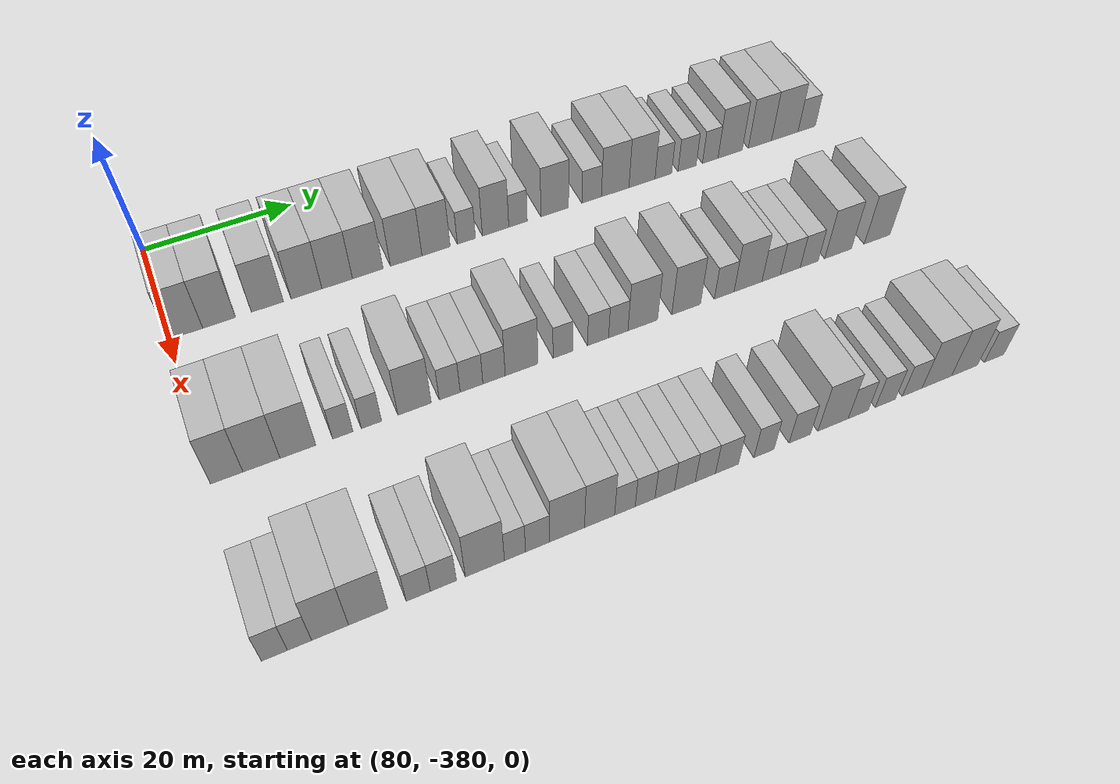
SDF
<sdf version="1.6">
 <world name="default">
  <model name="building_560">
   <static>1</static>
   <pose>91.0000 -377.8980 0 0.000000 0.000000 0.000000</pose>
   <link name="link">
    <pose>0 0 4.50 0 0 0</pose>
    <collision name="collision"><geometry><box><size>10.0000 4.2041 9.0000</size></box></geometry></collision>
    <visual name="visual">
     <cast_shadows>0</cast_shadows>
     <geometry><box><size>10.0000 4.2041 9.0000</size></box></geometry>
     <material>
      <script>
       <uri>model://HANNAS_wall/materials/scripts</uri>
       <uri>model://HANNAS_wall/materials/textures</uri>
       <name>vrc/HANNAS_wall</name>
      </script>
     </material>
    </visual>
   </link>
  </model>
  <model name="building_561">
   <static>1</static>
   <pose>91.0000 -373.7364 0 0.000000 0.000000 0.000000</pose>
   <link name="link">
    <pose>0 0 4.50 0 0 0</pose>
    <collision name="collision"><geometry><box><size>10.0000 4.1190 9.0000</size></box></geometry></collision>
    <visual name="visual">
     <cast_shadows>0</cast_shadows>
     <geometry><box><size>10.0000 4.1190 9.0000</size></box></geometry>
     <material>
      <script>
       <uri>model://HANNAS_wall/materials/scripts</uri>
       <uri>model://HANNAS_wall/materials/textures</uri>
       <name>vrc/HANNAS_wall</name>
      </script>
     </material>
    </visual>
   </link>
  </model>
  <model name="building_562">
   <static>1</static>
   <pose>91.0000 -367.6117 0 0.000000 0.000000 0.000000</pose>
   <link name="link">
    <pose>0 0 4.50 0 0 0</pose>
    <collision name="collision"><geometry><box><size>10.0000 4.1303 9.0000</size></box></geometry></collision>
    <visual name="visual">
     <cast_shadows>0</cast_shadows>
     <geometry><box><size>10.0000 4.1303 9.0000</size></box></geometry>
     <material>
      <script>
       <uri>model://HANNAS_wall/materials/scripts</uri>
       <uri>model://HANNAS_wall/materials/textures</uri>
       <name>vrc/HANNAS_wall</name>
      </script>
     </material>
    </visual>
   </link>
  </model>
  <model name="building_563">
   <static>1</static>
   <pose>91.0000 -362.5352 0 0.000000 0.000000 0.000000</pose>
   <link name="link">
    <pose>0 0 4.50 0 0 0</pose>
    <collision name="collision"><geometry><box><size>10.0000 4.0228 9.0000</size></box></geometry></collision>
    <visual name="visual">
     <cast_shadows>0</cast_shadows>
     <geometry><box><size>10.0000 4.0228 9.0000</size></box></geometry>
     <material>
      <script>
       <uri>model://HANNAS_wall/materials/scripts</uri>
       <uri>model://HANNAS_wall/materials/textures</uri>
       <name>vrc/HANNAS_wall</name>
      </script>
     </material>
    </visual>
   </link>
  </model>
  <model name="building_564">
   <static>1</static>
   <pose>91.0000 -358.4933 0 0.000000 0.000000 0.000000</pose>
   <link name="link">
    <pose>0 0 4.50 0 0 0</pose>
    <collision name="collision"><geometry><box><size>10.0000 4.0609 9.0000</size></box></geometry></collision>
    <visual name="visual">
     <cast_shadows>0</cast_shadows>
     <geometry><box><size>10.0000 4.0609 9.0000</size></box></geometry>
     <material>
      <script>
       <uri>model://HANNAS_wall/materials/scripts</uri>
       <uri>model://HANNAS_wall/materials/textures</uri>
       <name>vrc/HANNAS_wall</name>
      </script>
     </material>
    </visual>
   </link>
  </model>
  <model name="building_565">
   <static>1</static>
   <pose>91.0000 -354.4059 0 0.000000 0.000000 0.000000</pose>
   <link name="link">
    <pose>0 0 4.50 0 0 0</pose>
    <collision name="collision"><geometry><box><size>10.0000 4.1139 9.0000</size></box></geometry></collision>
    <visual name="visual">
     <cast_shadows>0</cast_shadows>
     <geometry><box><size>10.0000 4.1139 9.0000</size></box></geometry>
     <material>
      <script>
       <uri>model://HANNAS_wall/materials/scripts</uri>
       <uri>model://HANNAS_wall/materials/textures</uri>
       <name>vrc/HANNAS_wall</name>
      </script>
     </material>
    </visual>
   </link>
  </model>
  <model name="building_566">
   <static>1</static>
   <pose>91.0000 -349.1775 0 0.000000 0.000000 0.000000</pose>
   <link name="link">
    <pose>0 0 4.50 0 0 0</pose>
    <collision name="collision"><geometry><box><size>10.0000 4.3428 9.0000</size></box></geometry></collision>
    <visual name="visual">
     <cast_shadows>0</cast_shadows>
     <geometry><box><size>10.0000 4.3428 9.0000</size></box></geometry>
     <material>
      <script>
       <uri>model://HANNAS_wall/materials/scripts</uri>
       <uri>model://HANNAS_wall/materials/textures</uri>
       <name>vrc/HANNAS_wall</name>
      </script>
     </material>
    </visual>
   </link>
  </model>
  <model name="building_567">
   <static>1</static>
   <pose>91.0000 -345.0442 0 0.000000 0.000000 0.000000</pose>
   <link name="link">
    <pose>0 0 4.50 0 0 0</pose>
    <collision name="collision"><geometry><box><size>10.0000 3.9239 9.0000</size></box></geometry></collision>
    <visual name="visual">
     <cast_shadows>0</cast_shadows>
     <geometry><box><size>10.0000 3.9239 9.0000</size></box></geometry>
     <material>
      <script>
       <uri>model://HANNAS_wall/materials/scripts</uri>
       <uri>model://HANNAS_wall/materials/textures</uri>
       <name>vrc/HANNAS_wall</name>
      </script>
     </material>
    </visual>
   </link>
  </model>
  <model name="building_568">
   <static>1</static>
   <pose>91.0000 -340.8019 0 0.000000 0.000000 0.000000</pose>
   <link name="link">
    <pose>0 0 3.00 0 0 0</pose>
    <collision name="collision"><geometry><box><size>10.0000 2.5607 6.0000</size></box></geometry></collision>
    <visual name="visual">
     <cast_shadows>0</cast_shadows>
     <geometry><box><size>10.0000 2.5607 6.0000</size></box></geometry>
     <material>
      <script>
       <uri>model://HANNAS_wall/materials/scripts</uri>
       <uri>model://HANNAS_wall/materials/textures</uri>
       <name>vrc/HANNAS_wall</name>
      </script>
     </material>
    </visual>
   </link>
  </model>
  <model name="building_569">
   <static>1</static>
   <pose>91.0000 -336.6332 0 0.000000 0.000000 0.000000</pose>
   <link name="link">
    <pose>0 0 4.50 0 0 0</pose>
    <collision name="collision"><geometry><box><size>10.0000 3.7766 9.0000</size></box></geometry></collision>
    <visual name="visual">
     <cast_shadows>0</cast_shadows>
     <geometry><box><size>10.0000 3.7766 9.0000</size></box></geometry>
     <material>
      <script>
       <uri>model://HANNAS_wall/materials/scripts</uri>
       <uri>model://HANNAS_wall/materials/textures</uri>
       <name>vrc/HANNAS_wall</name>
      </script>
     </material>
    </visual>
   </link>
  </model>
  <model name="building_570">
   <static>1</static>
   <pose>91.0000 -333.4052 0 0.000000 0.000000 0.000000</pose>
   <link name="link">
    <pose>0 0 3.00 0 0 0</pose>
    <collision name="collision"><geometry><box><size>10.0000 2.6794 6.0000</size></box></geometry></collision>
    <visual name="visual">
     <cast_shadows>0</cast_shadows>
     <geometry><box><size>10.0000 2.6794 6.0000</size></box></geometry>
     <material>
      <script>
       <uri>model://HANNAS_wall/materials/scripts</uri>
       <uri>model://HANNAS_wall/materials/textures</uri>
       <name>vrc/HANNAS_wall</name>
      </script>
     </material>
    </visual>
   </link>
  </model>
  <model name="building_571">
   <static>1</static>
   <pose>91.0000 -328.0269 0 0.000000 0.000000 0.000000</pose>
   <link name="link">
    <pose>0 0 4.50 0 0 0</pose>
    <collision name="collision"><geometry><box><size>10.0000 4.0771 9.0000</size></box></geometry></collision>
    <visual name="visual">
     <cast_shadows>0</cast_shadows>
     <geometry><box><size>10.0000 4.0771 9.0000</size></box></geometry>
     <material>
      <script>
       <uri>model://HANNAS_wall/materials/scripts</uri>
       <uri>model://HANNAS_wall/materials/textures</uri>
       <name>vrc/HANNAS_wall</name>
      </script>
     </material>
    </visual>
   </link>
  </model>
  <model name="building_572">
   <static>1</static>
   <pose>91.0000 -322.5203 0 0.000000 0.000000 0.000000</pose>
   <link name="link">
    <pose>0 0 3.00 0 0 0</pose>
    <collision name="collision"><geometry><box><size>10.0000 2.9361 6.0000</size></box></geometry></collision>
    <visual name="visual">
     <cast_shadows>0</cast_shadows>
     <geometry><box><size>10.0000 2.9361 6.0000</size></box></geometry>
     <material>
      <script>
       <uri>model://HANNAS_wall/materials/scripts</uri>
       <uri>model://HANNAS_wall/materials/textures</uri>
       <name>vrc/HANNAS_wall</name>
      </script>
     </material>
    </visual>
   </link>
  </model>
  <model name="building_573">
   <static>1</static>
   <pose>91.0000 -318.9474 0 0.000000 0.000000 0.000000</pose>
   <link name="link">
    <pose>0 0 4.50 0 0 0</pose>
    <collision name="collision"><geometry><box><size>10.0000 4.2098 9.0000</size></box></geometry></collision>
    <visual name="visual">
     <cast_shadows>0</cast_shadows>
     <geometry><box><size>10.0000 4.2098 9.0000</size></box></geometry>
     <material>
      <script>
       <uri>model://HANNAS_wall/materials/scripts</uri>
       <uri>model://HANNAS_wall/materials/textures</uri>
       <name>vrc/HANNAS_wall</name>
      </script>
     </material>
    </visual>
   </link>
  </model>
  <model name="building_574">
   <static>1</static>
   <pose>91.0000 -314.8272 0 0.000000 0.000000 0.000000</pose>
   <link name="link">
    <pose>0 0 4.50 0 0 0</pose>
    <collision name="collision"><geometry><box><size>10.0000 4.0307 9.0000</size></box></geometry></collision>
    <visual name="visual">
     <cast_shadows>0</cast_shadows>
     <geometry><box><size>10.0000 4.0307 9.0000</size></box></geometry>
     <material>
      <script>
       <uri>model://HANNAS_wall/materials/scripts</uri>
       <uri>model://HANNAS_wall/materials/textures</uri>
       <name>vrc/HANNAS_wall</name>
      </script>
     </material>
    </visual>
   </link>
  </model>
  <model name="building_575">
   <static>1</static>
   <pose>91.0000 -311.5122 0 0.000000 0.000000 0.000000</pose>
   <link name="link">
    <pose>0 0 3.00 0 0 0</pose>
    <collision name="collision"><geometry><box><size>10.0000 2.5993 6.0000</size></box></geometry></collision>
    <visual name="visual">
     <cast_shadows>0</cast_shadows>
     <geometry><box><size>10.0000 2.5993 6.0000</size></box></geometry>
     <material>
      <script>
       <uri>model://HANNAS_wall/materials/scripts</uri>
       <uri>model://HANNAS_wall/materials/textures</uri>
       <name>vrc/HANNAS_wall</name>
      </script>
     </material>
    </visual>
   </link>
  </model>
  <model name="building_576">
   <static>1</static>
   <pose>91.0000 -307.7695 0 0.000000 0.000000 0.000000</pose>
   <link name="link">
    <pose>0 0 3.00 0 0 0</pose>
    <collision name="collision"><geometry><box><size>10.0000 2.8862 6.0000</size></box></geometry></collision>
    <visual name="visual">
     <cast_shadows>0</cast_shadows>
     <geometry><box><size>10.0000 2.8862 6.0000</size></box></geometry>
     <material>
      <script>
       <uri>model://HANNAS_wall/materials/scripts</uri>
       <uri>model://HANNAS_wall/materials/textures</uri>
       <name>vrc/HANNAS_wall</name>
      </script>
     </material>
    </visual>
   </link>
  </model>
  <model name="building_577">
   <static>1</static>
   <pose>91.0000 -304.0789 0 0.000000 0.000000 0.000000</pose>
   <link name="link">
    <pose>0 0 3.00 0 0 0</pose>
    <collision name="collision"><geometry><box><size>10.0000 2.4949 6.0000</size></box></geometry></collision>
    <visual name="visual">
     <cast_shadows>0</cast_shadows>
     <geometry><box><size>10.0000 2.4949 6.0000</size></box></geometry>
     <material>
      <script>
       <uri>model://HANNAS_wall/materials/scripts</uri>
       <uri>model://HANNAS_wall/materials/textures</uri>
       <name>vrc/HANNAS_wall</name>
      </script>
     </material>
    </visual>
   </link>
  </model>
  <model name="building_578">
   <static>1</static>
   <pose>91.0000 -300.8722 0 0.000000 0.000000 0.000000</pose>
   <link name="link">
    <pose>0 0 4.50 0 0 0</pose>
    <collision name="collision"><geometry><box><size>10.0000 3.9184 9.0000</size></box></geometry></collision>
    <visual name="visual">
     <cast_shadows>0</cast_shadows>
     <geometry><box><size>10.0000 3.9184 9.0000</size></box></geometry>
     <material>
      <script>
       <uri>model://HANNAS_wall/materials/scripts</uri>
       <uri>model://HANNAS_wall/materials/textures</uri>
       <name>vrc/HANNAS_wall</name>
      </script>
     </material>
    </visual>
   </link>
  </model>
  <model name="building_579">
   <static>1</static>
   <pose>91.0000 -296.0052 0 0.000000 0.000000 0.000000</pose>
   <link name="link">
    <pose>0 0 4.50 0 0 0</pose>
    <collision name="collision"><geometry><box><size>10.0000 3.8156 9.0000</size></box></geometry></collision>
    <visual name="visual">
     <cast_shadows>0</cast_shadows>
     <geometry><box><size>10.0000 3.8156 9.0000</size></box></geometry>
     <material>
      <script>
       <uri>model://HANNAS_wall/materials/scripts</uri>
       <uri>model://HANNAS_wall/materials/textures</uri>
       <name>vrc/HANNAS_wall</name>
      </script>
     </material>
    </visual>
   </link>
  </model>
  <model name="building_580">
   <static>1</static>
   <pose>91.0000 -291.8831 0 0.000000 0.000000 0.000000</pose>
   <link name="link">
    <pose>0 0 4.50 0 0 0</pose>
    <collision name="collision"><geometry><box><size>10.0000 4.4286 9.0000</size></box></geometry></collision>
    <visual name="visual">
     <cast_shadows>0</cast_shadows>
     <geometry><box><size>10.0000 4.4286 9.0000</size></box></geometry>
     <material>
      <script>
       <uri>model://HANNAS_wall/materials/scripts</uri>
       <uri>model://HANNAS_wall/materials/textures</uri>
       <name>vrc/HANNAS_wall</name>
      </script>
     </material>
    </visual>
   </link>
  </model>
  <model name="building_581">
   <static>1</static>
   <pose>91.0000 -288.2181 0 0.000000 0.000000 0.000000</pose>
   <link name="link">
    <pose>0 0 3.00 0 0 0</pose>
    <collision name="collision"><geometry><box><size>10.0000 2.9015 6.0000</size></box></geometry></collision>
    <visual name="visual">
     <cast_shadows>0</cast_shadows>
     <geometry><box><size>10.0000 2.9015 6.0000</size></box></geometry>
     <material>
      <script>
       <uri>model://HANNAS_wall/materials/scripts</uri>
       <uri>model://HANNAS_wall/materials/textures</uri>
       <name>vrc/HANNAS_wall</name>
      </script>
     </material>
    </visual>
   </link>
  </model>
  <model name="building_743">
   <static>1</static>
   <pose>113.0000 -378.1537 0 0.000000 0.000000 0.000000</pose>
   <link name="link">
    <pose>0 0 4.50 0 0 0</pose>
    <collision name="collision"><geometry><box><size>10.0000 3.6926 9.0000</size></box></geometry></collision>
    <visual name="visual">
     <cast_shadows>0</cast_shadows>
     <geometry><box><size>10.0000 3.6926 9.0000</size></box></geometry>
     <material>
      <script>
       <uri>model://HANNAS_wall/materials/scripts</uri>
       <uri>model://HANNAS_wall/materials/textures</uri>
       <name>vrc/HANNAS_wall</name>
      </script>
     </material>
    </visual>
   </link>
  </model>
  <model name="building_744">
   <static>1</static>
   <pose>113.0000 -374.1718 0 0.000000 0.000000 0.000000</pose>
   <link name="link">
    <pose>0 0 4.50 0 0 0</pose>
    <collision name="collision"><geometry><box><size>10.0000 4.2712 9.0000</size></box></geometry></collision>
    <visual name="visual">
     <cast_shadows>0</cast_shadows>
     <geometry><box><size>10.0000 4.2712 9.0000</size></box></geometry>
     <material>
      <script>
       <uri>model://HANNAS_wall/materials/scripts</uri>
       <uri>model://HANNAS_wall/materials/textures</uri>
       <name>vrc/HANNAS_wall</name>
      </script>
     </material>
    </visual>
   </link>
  </model>
  <model name="building_745">
   <static>1</static>
   <pose>113.0000 -369.9419 0 0.000000 0.000000 0.000000</pose>
   <link name="link">
    <pose>0 0 4.50 0 0 0</pose>
    <collision name="collision"><geometry><box><size>10.0000 4.1886 9.0000</size></box></geometry></collision>
    <visual name="visual">
     <cast_shadows>0</cast_shadows>
     <geometry><box><size>10.0000 4.1886 9.0000</size></box></geometry>
     <material>
      <script>
       <uri>model://HANNAS_wall/materials/scripts</uri>
       <uri>model://HANNAS_wall/materials/textures</uri>
       <name>vrc/HANNAS_wall</name>
      </script>
     </material>
    </visual>
   </link>
  </model>
  <model name="building_746">
   <static>1</static>
   <pose>113.0000 -364.6315 0 0.000000 0.000000 0.000000</pose>
   <link name="link">
    <pose>0 0 3.00 0 0 0</pose>
    <collision name="collision"><geometry><box><size>10.0000 2.4324 6.0000</size></box></geometry></collision>
    <visual name="visual">
     <cast_shadows>0</cast_shadows>
     <geometry><box><size>10.0000 2.4324 6.0000</size></box></geometry>
     <material>
      <script>
       <uri>model://HANNAS_wall/materials/scripts</uri>
       <uri>model://HANNAS_wall/materials/textures</uri>
       <name>vrc/HANNAS_wall</name>
      </script>
     </material>
    </visual>
   </link>
  </model>
  <model name="building_747">
   <static>1</static>
   <pose>113.0000 -361.1857 0 0.000000 0.000000 0.000000</pose>
   <link name="link">
    <pose>0 0 3.00 0 0 0</pose>
    <collision name="collision"><geometry><box><size>10.0000 2.4591 6.0000</size></box></geometry></collision>
    <visual name="visual">
     <cast_shadows>0</cast_shadows>
     <geometry><box><size>10.0000 2.4591 6.0000</size></box></geometry>
     <material>
      <script>
       <uri>model://HANNAS_wall/materials/scripts</uri>
       <uri>model://HANNAS_wall/materials/textures</uri>
       <name>vrc/HANNAS_wall</name>
      </script>
     </material>
    </visual>
   </link>
  </model>
  <model name="building_748">
   <static>1</static>
   <pose>113.0000 -355.8878 0 0.000000 0.000000 0.000000</pose>
   <link name="link">
    <pose>0 0 4.50 0 0 0</pose>
    <collision name="collision"><geometry><box><size>10.0000 4.1368 9.0000</size></box></geometry></collision>
    <visual name="visual">
     <cast_shadows>0</cast_shadows>
     <geometry><box><size>10.0000 4.1368 9.0000</size></box></geometry>
     <material>
      <script>
       <uri>model://HANNAS_wall/materials/scripts</uri>
       <uri>model://HANNAS_wall/materials/textures</uri>
       <name>vrc/HANNAS_wall</name>
      </script>
     </material>
    </visual>
   </link>
  </model>
  <model name="building_749">
   <static>1</static>
   <pose>113.0000 -351.4961 0 0.000000 0.000000 0.000000</pose>
   <link name="link">
    <pose>0 0 3.00 0 0 0</pose>
    <collision name="collision"><geometry><box><size>10.0000 2.6465 6.0000</size></box></geometry></collision>
    <visual name="visual">
     <cast_shadows>0</cast_shadows>
     <geometry><box><size>10.0000 2.6465 6.0000</size></box></geometry>
     <material>
      <script>
       <uri>model://HANNAS_wall/materials/scripts</uri>
       <uri>model://HANNAS_wall/materials/textures</uri>
       <name>vrc/HANNAS_wall</name>
      </script>
     </material>
    </visual>
   </link>
  </model>
  <model name="building_750">
   <static>1</static>
   <pose>113.0000 -348.7234 0 0.000000 0.000000 0.000000</pose>
   <link name="link">
    <pose>0 0 3.00 0 0 0</pose>
    <collision name="collision"><geometry><box><size>10.0000 2.8990 6.0000</size></box></geometry></collision>
    <visual name="visual">
     <cast_shadows>0</cast_shadows>
     <geometry><box><size>10.0000 2.8990 6.0000</size></box></geometry>
     <material>
      <script>
       <uri>model://HANNAS_wall/materials/scripts</uri>
       <uri>model://HANNAS_wall/materials/textures</uri>
       <name>vrc/HANNAS_wall</name>
      </script>
     </material>
    </visual>
   </link>
  </model>
  <model name="building_751">
   <static>1</static>
   <pose>113.0000 -345.8393 0 0.000000 0.000000 0.000000</pose>
   <link name="link">
    <pose>0 0 3.00 0 0 0</pose>
    <collision name="collision"><geometry><box><size>10.0000 2.8691 6.0000</size></box></geometry></collision>
    <visual name="visual">
     <cast_shadows>0</cast_shadows>
     <geometry><box><size>10.0000 2.8691 6.0000</size></box></geometry>
     <material>
      <script>
       <uri>model://HANNAS_wall/materials/scripts</uri>
       <uri>model://HANNAS_wall/materials/textures</uri>
       <name>vrc/HANNAS_wall</name>
      </script>
     </material>
    </visual>
   </link>
  </model>
  <model name="building_752">
   <static>1</static>
   <pose>113.0000 -342.2700 0 0.000000 0.000000 0.000000</pose>
   <link name="link">
    <pose>0 0 4.50 0 0 0</pose>
    <collision name="collision"><geometry><box><size>10.0000 4.2695 9.0000</size></box></geometry></collision>
    <visual name="visual">
     <cast_shadows>0</cast_shadows>
     <geometry><box><size>10.0000 4.2695 9.0000</size></box></geometry>
     <material>
      <script>
       <uri>model://HANNAS_wall/materials/scripts</uri>
       <uri>model://HANNAS_wall/materials/textures</uri>
       <name>vrc/HANNAS_wall</name>
      </script>
     </material>
    </visual>
   </link>
  </model>
  <model name="building_753">
   <static>1</static>
   <pose>113.0000 -336.8301 0 0.000000 0.000000 0.000000</pose>
   <link name="link">
    <pose>0 0 3.00 0 0 0</pose>
    <collision name="collision"><geometry><box><size>10.0000 2.6101 6.0000</size></box></geometry></collision>
    <visual name="visual">
     <cast_shadows>0</cast_shadows>
     <geometry><box><size>10.0000 2.6101 6.0000</size></box></geometry>
     <material>
      <script>
       <uri>model://HANNAS_wall/materials/scripts</uri>
       <uri>model://HANNAS_wall/materials/textures</uri>
       <name>vrc/HANNAS_wall</name>
      </script>
     </material>
    </visual>
   </link>
  </model>
  <model name="building_754">
   <static>1</static>
   <pose>113.0000 -332.0858 0 0.000000 0.000000 0.000000</pose>
   <link name="link">
    <pose>0 0 3.00 0 0 0</pose>
    <collision name="collision"><geometry><box><size>10.0000 2.8785 6.0000</size></box></geometry></collision>
    <visual name="visual">
     <cast_shadows>0</cast_shadows>
     <geometry><box><size>10.0000 2.8785 6.0000</size></box></geometry>
     <material>
      <script>
       <uri>model://HANNAS_wall/materials/scripts</uri>
       <uri>model://HANNAS_wall/materials/textures</uri>
       <name>vrc/HANNAS_wall</name>
      </script>
     </material>
    </visual>
   </link>
  </model>
  <model name="building_755">
   <static>1</static>
   <pose>113.0000 -329.3230 0 0.000000 0.000000 0.000000</pose>
   <link name="link">
    <pose>0 0 3.00 0 0 0</pose>
    <collision name="collision"><geometry><box><size>10.0000 2.6471 6.0000</size></box></geometry></collision>
    <visual name="visual">
     <cast_shadows>0</cast_shadows>
     <geometry><box><size>10.0000 2.6471 6.0000</size></box></geometry>
     <material>
      <script>
       <uri>model://HANNAS_wall/materials/scripts</uri>
       <uri>model://HANNAS_wall/materials/textures</uri>
       <name>vrc/HANNAS_wall</name>
      </script>
     </material>
    </visual>
   </link>
  </model>
  <model name="building_756">
   <static>1</static>
   <pose>113.0000 -325.9396 0 0.000000 0.000000 0.000000</pose>
   <link name="link">
    <pose>0 0 4.50 0 0 0</pose>
    <collision name="collision"><geometry><box><size>10.0000 4.1198 9.0000</size></box></geometry></collision>
    <visual name="visual">
     <cast_shadows>0</cast_shadows>
     <geometry><box><size>10.0000 4.1198 9.0000</size></box></geometry>
     <material>
      <script>
       <uri>model://HANNAS_wall/materials/scripts</uri>
       <uri>model://HANNAS_wall/materials/textures</uri>
       <name>vrc/HANNAS_wall</name>
      </script>
     </material>
    </visual>
   </link>
  </model>
  <model name="building_757">
   <static>1</static>
   <pose>113.0000 -319.8304 0 0.000000 0.000000 0.000000</pose>
   <link name="link">
    <pose>0 0 4.50 0 0 0</pose>
    <collision name="collision"><geometry><box><size>10.0000 4.0986 9.0000</size></box></geometry></collision>
    <visual name="visual">
     <cast_shadows>0</cast_shadows>
     <geometry><box><size>10.0000 4.0986 9.0000</size></box></geometry>
     <material>
      <script>
       <uri>model://HANNAS_wall/materials/scripts</uri>
       <uri>model://HANNAS_wall/materials/textures</uri>
       <name>vrc/HANNAS_wall</name>
      </script>
     </material>
    </visual>
   </link>
  </model>
  <model name="building_758">
   <static>1</static>
   <pose>113.0000 -314.3562 0 0.000000 0.000000 0.000000</pose>
   <link name="link">
    <pose>0 0 3.00 0 0 0</pose>
    <collision name="collision"><geometry><box><size>10.0000 2.8499 6.0000</size></box></geometry></collision>
    <visual name="visual">
     <cast_shadows>0</cast_shadows>
     <geometry><box><size>10.0000 2.8499 6.0000</size></box></geometry>
     <material>
      <script>
       <uri>model://HANNAS_wall/materials/scripts</uri>
       <uri>model://HANNAS_wall/materials/textures</uri>
       <name>vrc/HANNAS_wall</name>
      </script>
     </material>
    </visual>
   </link>
  </model>
  <model name="building_759">
   <static>1</static>
   <pose>113.0000 -310.8762 0 0.000000 0.000000 0.000000</pose>
   <link name="link">
    <pose>0 0 4.50 0 0 0</pose>
    <collision name="collision"><geometry><box><size>10.0000 4.1100 9.0000</size></box></geometry></collision>
    <visual name="visual">
     <cast_shadows>0</cast_shadows>
     <geometry><box><size>10.0000 4.1100 9.0000</size></box></geometry>
     <material>
      <script>
       <uri>model://HANNAS_wall/materials/scripts</uri>
       <uri>model://HANNAS_wall/materials/textures</uri>
       <name>vrc/HANNAS_wall</name>
      </script>
     </material>
    </visual>
   </link>
  </model>
  <model name="building_760">
   <static>1</static>
   <pose>113.0000 -307.4540 0 0.000000 0.000000 0.000000</pose>
   <link name="link">
    <pose>0 0 3.00 0 0 0</pose>
    <collision name="collision"><geometry><box><size>10.0000 2.7344 6.0000</size></box></geometry></collision>
    <visual name="visual">
     <cast_shadows>0</cast_shadows>
     <geometry><box><size>10.0000 2.7344 6.0000</size></box></geometry>
     <material>
      <script>
       <uri>model://HANNAS_wall/materials/scripts</uri>
       <uri>model://HANNAS_wall/materials/textures</uri>
       <name>vrc/HANNAS_wall</name>
      </script>
     </material>
    </visual>
   </link>
  </model>
  <model name="building_761">
   <static>1</static>
   <pose>113.0000 -304.5899 0 0.000000 0.000000 0.000000</pose>
   <link name="link">
    <pose>0 0 3.00 0 0 0</pose>
    <collision name="collision"><geometry><box><size>10.0000 2.9938 6.0000</size></box></geometry></collision>
    <visual name="visual">
     <cast_shadows>0</cast_shadows>
     <geometry><box><size>10.0000 2.9938 6.0000</size></box></geometry>
     <material>
      <script>
       <uri>model://HANNAS_wall/materials/scripts</uri>
       <uri>model://HANNAS_wall/materials/textures</uri>
       <name>vrc/HANNAS_wall</name>
      </script>
     </material>
    </visual>
   </link>
  </model>
  <model name="building_762">
   <static>1</static>
   <pose>113.0000 -301.7258 0 0.000000 0.000000 0.000000</pose>
   <link name="link">
    <pose>0 0 3.00 0 0 0</pose>
    <collision name="collision"><geometry><box><size>10.0000 2.7342 6.0000</size></box></geometry></collision>
    <visual name="visual">
     <cast_shadows>0</cast_shadows>
     <geometry><box><size>10.0000 2.7342 6.0000</size></box></geometry>
     <material>
      <script>
       <uri>model://HANNAS_wall/materials/scripts</uri>
       <uri>model://HANNAS_wall/materials/textures</uri>
       <name>vrc/HANNAS_wall</name>
      </script>
     </material>
    </visual>
   </link>
  </model>
  <model name="building_763">
   <static>1</static>
   <pose>113.0000 -297.2979 0 0.000000 0.000000 0.000000</pose>
   <link name="link">
    <pose>0 0 4.50 0 0 0</pose>
    <collision name="collision"><geometry><box><size>10.0000 4.1217 9.0000</size></box></geometry></collision>
    <visual name="visual">
     <cast_shadows>0</cast_shadows>
     <geometry><box><size>10.0000 4.1217 9.0000</size></box></geometry>
     <material>
      <script>
       <uri>model://HANNAS_wall/materials/scripts</uri>
       <uri>model://HANNAS_wall/materials/textures</uri>
       <name>vrc/HANNAS_wall</name>
      </script>
     </material>
    </visual>
   </link>
  </model>
  <model name="building_764">
   <static>1</static>
   <pose>113.0000 -291.2049 0 0.000000 0.000000 0.000000</pose>
   <link name="link">
    <pose>0 0 4.50 0 0 0</pose>
    <collision name="collision"><geometry><box><size>10.0000 4.0642 9.0000</size></box></geometry></collision>
    <visual name="visual">
     <cast_shadows>0</cast_shadows>
     <geometry><box><size>10.0000 4.0642 9.0000</size></box></geometry>
     <material>
      <script>
       <uri>model://HANNAS_wall/materials/scripts</uri>
       <uri>model://HANNAS_wall/materials/textures</uri>
       <name>vrc/HANNAS_wall</name>
      </script>
     </material>
    </visual>
   </link>
  </model>
  <model name="building_930">
   <static>1</static>
   <pose>135.0000 -378.6527 0 0.000000 0.000000 0.000000</pose>
   <link name="link">
    <pose>0 0 3.00 0 0 0</pose>
    <collision name="collision"><geometry><box><size>10.0000 2.6945 6.0000</size></box></geometry></collision>
    <visual name="visual">
     <cast_shadows>0</cast_shadows>
     <geometry><box><size>10.0000 2.6945 6.0000</size></box></geometry>
     <material>
      <script>
       <uri>model://HANNAS_wall/materials/scripts</uri>
       <uri>model://HANNAS_wall/materials/textures</uri>
       <name>vrc/HANNAS_wall</name>
      </script>
     </material>
    </visual>
   </link>
  </model>
  <model name="building_931">
   <static>1</static>
   <pose>135.0000 -376.0555 0 0.000000 0.000000 0.000000</pose>
   <link name="link">
    <pose>0 0 3.00 0 0 0</pose>
    <collision name="collision"><geometry><box><size>10.0000 2.5000 6.0000</size></box></geometry></collision>
    <visual name="visual">
     <cast_shadows>0</cast_shadows>
     <geometry><box><size>10.0000 2.5000 6.0000</size></box></geometry>
     <material>
      <script>
       <uri>model://HANNAS_wall/materials/scripts</uri>
       <uri>model://HANNAS_wall/materials/textures</uri>
       <name>vrc/HANNAS_wall</name>
      </script>
     </material>
    </visual>
   </link>
  </model>
  <model name="building_932">
   <static>1</static>
   <pose>135.0000 -372.8546 0 0.000000 0.000000 0.000000</pose>
   <link name="link">
    <pose>0 0 4.50 0 0 0</pose>
    <collision name="collision"><geometry><box><size>10.0000 3.9018 9.0000</size></box></geometry></collision>
    <visual name="visual">
     <cast_shadows>0</cast_shadows>
     <geometry><box><size>10.0000 3.9018 9.0000</size></box></geometry>
     <material>
      <script>
       <uri>model://HANNAS_wall/materials/scripts</uri>
       <uri>model://HANNAS_wall/materials/textures</uri>
       <name>vrc/HANNAS_wall</name>
      </script>
     </material>
    </visual>
   </link>
  </model>
  <model name="building_933">
   <static>1</static>
   <pose>135.0000 -368.7907 0 0.000000 0.000000 0.000000</pose>
   <link name="link">
    <pose>0 0 4.50 0 0 0</pose>
    <collision name="collision"><geometry><box><size>10.0000 4.2260 9.0000</size></box></geometry></collision>
    <visual name="visual">
     <cast_shadows>0</cast_shadows>
     <geometry><box><size>10.0000 4.2260 9.0000</size></box></geometry>
     <material>
      <script>
       <uri>model://HANNAS_wall/materials/scripts</uri>
       <uri>model://HANNAS_wall/materials/textures</uri>
       <name>vrc/HANNAS_wall</name>
      </script>
     </material>
    </visual>
   </link>
  </model>
  <model name="building_934">
   <static>1</static>
   <pose>135.0000 -363.3394 0 0.000000 0.000000 0.000000</pose>
   <link name="link">
    <pose>0 0 3.00 0 0 0</pose>
    <collision name="collision"><geometry><box><size>10.0000 2.6766 6.0000</size></box></geometry></collision>
    <visual name="visual">
     <cast_shadows>0</cast_shadows>
     <geometry><box><size>10.0000 2.6766 6.0000</size></box></geometry>
     <material>
      <script>
       <uri>model://HANNAS_wall/materials/scripts</uri>
       <uri>model://HANNAS_wall/materials/textures</uri>
       <name>vrc/HANNAS_wall</name>
      </script>
     </material>
    </visual>
   </link>
  </model>
  <model name="building_935">
   <static>1</static>
   <pose>135.0000 -360.5538 0 0.000000 0.000000 0.000000</pose>
   <link name="link">
    <pose>0 0 3.00 0 0 0</pose>
    <collision name="collision"><geometry><box><size>10.0000 2.8946 6.0000</size></box></geometry></collision>
    <visual name="visual">
     <cast_shadows>0</cast_shadows>
     <geometry><box><size>10.0000 2.8946 6.0000</size></box></geometry>
     <material>
      <script>
       <uri>model://HANNAS_wall/materials/scripts</uri>
       <uri>model://HANNAS_wall/materials/textures</uri>
       <name>vrc/HANNAS_wall</name>
      </script>
     </material>
    </visual>
   </link>
  </model>
  <model name="building_936">
   <static>1</static>
   <pose>135.0000 -355.8729 0 0.000000 0.000000 0.000000</pose>
   <link name="link">
    <pose>0 0 4.50 0 0 0</pose>
    <collision name="collision"><geometry><box><size>10.0000 4.4672 9.0000</size></box></geometry></collision>
    <visual name="visual">
     <cast_shadows>0</cast_shadows>
     <geometry><box><size>10.0000 4.4672 9.0000</size></box></geometry>
     <material>
      <script>
       <uri>model://HANNAS_wall/materials/scripts</uri>
       <uri>model://HANNAS_wall/materials/textures</uri>
       <name>vrc/HANNAS_wall</name>
      </script>
     </material>
    </visual>
   </link>
  </model>
  <model name="building_937">
   <static>1</static>
   <pose>135.0000 -352.4231 0 0.000000 0.000000 0.000000</pose>
   <link name="link">
    <pose>0 0 3.00 0 0 0</pose>
    <collision name="collision"><geometry><box><size>10.0000 2.4323 6.0000</size></box></geometry></collision>
    <visual name="visual">
     <cast_shadows>0</cast_shadows>
     <geometry><box><size>10.0000 2.4323 6.0000</size></box></geometry>
     <material>
      <script>
       <uri>model://HANNAS_wall/materials/scripts</uri>
       <uri>model://HANNAS_wall/materials/textures</uri>
       <name>vrc/HANNAS_wall</name>
      </script>
     </material>
    </visual>
   </link>
  </model>
  <model name="building_938">
   <static>1</static>
   <pose>135.0000 -349.7940 0 0.000000 0.000000 0.000000</pose>
   <link name="link">
    <pose>0 0 3.00 0 0 0</pose>
    <collision name="collision"><geometry><box><size>10.0000 2.8260 6.0000</size></box></geometry></collision>
    <visual name="visual">
     <cast_shadows>0</cast_shadows>
     <geometry><box><size>10.0000 2.8260 6.0000</size></box></geometry>
     <material>
      <script>
       <uri>model://HANNAS_wall/materials/scripts</uri>
       <uri>model://HANNAS_wall/materials/textures</uri>
       <name>vrc/HANNAS_wall</name>
      </script>
     </material>
    </visual>
   </link>
  </model>
  <model name="building_939">
   <static>1</static>
   <pose>135.0000 -346.3161 0 0.000000 0.000000 0.000000</pose>
   <link name="link">
    <pose>0 0 4.50 0 0 0</pose>
    <collision name="collision"><geometry><box><size>10.0000 4.1299 9.0000</size></box></geometry></collision>
    <visual name="visual">
     <cast_shadows>0</cast_shadows>
     <geometry><box><size>10.0000 4.1299 9.0000</size></box></geometry>
     <material>
      <script>
       <uri>model://HANNAS_wall/materials/scripts</uri>
       <uri>model://HANNAS_wall/materials/textures</uri>
       <name>vrc/HANNAS_wall</name>
      </script>
     </material>
    </visual>
   </link>
  </model>
  <model name="building_940">
   <static>1</static>
   <pose>135.0000 -342.4344 0 0.000000 0.000000 0.000000</pose>
   <link name="link">
    <pose>0 0 4.50 0 0 0</pose>
    <collision name="collision"><geometry><box><size>10.0000 3.6333 9.0000</size></box></geometry></collision>
    <visual name="visual">
     <cast_shadows>0</cast_shadows>
     <geometry><box><size>10.0000 3.6333 9.0000</size></box></geometry>
     <material>
      <script>
       <uri>model://HANNAS_wall/materials/scripts</uri>
       <uri>model://HANNAS_wall/materials/textures</uri>
       <name>vrc/HANNAS_wall</name>
      </script>
     </material>
    </visual>
   </link>
  </model>
  <model name="building_941">
   <static>1</static>
   <pose>135.0000 -339.3613 0 0.000000 0.000000 0.000000</pose>
   <link name="link">
    <pose>0 0 3.00 0 0 0</pose>
    <collision name="collision"><geometry><box><size>10.0000 2.5130 6.0000</size></box></geometry></collision>
    <visual name="visual">
     <cast_shadows>0</cast_shadows>
     <geometry><box><size>10.0000 2.5130 6.0000</size></box></geometry>
     <material>
      <script>
       <uri>model://HANNAS_wall/materials/scripts</uri>
       <uri>model://HANNAS_wall/materials/textures</uri>
       <name>vrc/HANNAS_wall</name>
      </script>
     </material>
    </visual>
   </link>
  </model>
  <model name="building_942">
   <static>1</static>
   <pose>135.0000 -336.8789 0 0.000000 0.000000 0.000000</pose>
   <link name="link">
    <pose>0 0 3.00 0 0 0</pose>
    <collision name="collision"><geometry><box><size>10.0000 2.4518 6.0000</size></box></geometry></collision>
    <visual name="visual">
     <cast_shadows>0</cast_shadows>
     <geometry><box><size>10.0000 2.4518 6.0000</size></box></geometry>
     <material>
      <script>
       <uri>model://HANNAS_wall/materials/scripts</uri>
       <uri>model://HANNAS_wall/materials/textures</uri>
       <name>vrc/HANNAS_wall</name>
      </script>
     </material>
    </visual>
   </link>
  </model>
  <model name="building_943">
   <static>1</static>
   <pose>135.0000 -334.4338 0 0.000000 0.000000 0.000000</pose>
   <link name="link">
    <pose>0 0 3.00 0 0 0</pose>
    <collision name="collision"><geometry><box><size>10.0000 2.4385 6.0000</size></box></geometry></collision>
    <visual name="visual">
     <cast_shadows>0</cast_shadows>
     <geometry><box><size>10.0000 2.4385 6.0000</size></box></geometry>
     <material>
      <script>
       <uri>model://HANNAS_wall/materials/scripts</uri>
       <uri>model://HANNAS_wall/materials/textures</uri>
       <name>vrc/HANNAS_wall</name>
      </script>
     </material>
    </visual>
   </link>
  </model>
  <model name="building_944">
   <static>1</static>
   <pose>135.0000 -331.9033 0 0.000000 0.000000 0.000000</pose>
   <link name="link">
    <pose>0 0 3.00 0 0 0</pose>
    <collision name="collision"><geometry><box><size>10.0000 2.6224 6.0000</size></box></geometry></collision>
    <visual name="visual">
     <cast_shadows>0</cast_shadows>
     <geometry><box><size>10.0000 2.6224 6.0000</size></box></geometry>
     <material>
      <script>
       <uri>model://HANNAS_wall/materials/scripts</uri>
       <uri>model://HANNAS_wall/materials/textures</uri>
       <name>vrc/HANNAS_wall</name>
      </script>
     </material>
    </visual>
   </link>
  </model>
  <model name="building_945">
   <static>1</static>
   <pose>135.0000 -329.3028 0 0.000000 0.000000 0.000000</pose>
   <link name="link">
    <pose>0 0 3.00 0 0 0</pose>
    <collision name="collision"><geometry><box><size>10.0000 2.5786 6.0000</size></box></geometry></collision>
    <visual name="visual">
     <cast_shadows>0</cast_shadows>
     <geometry><box><size>10.0000 2.5786 6.0000</size></box></geometry>
     <material>
      <script>
       <uri>model://HANNAS_wall/materials/scripts</uri>
       <uri>model://HANNAS_wall/materials/textures</uri>
       <name>vrc/HANNAS_wall</name>
      </script>
     </material>
    </visual>
   </link>
  </model>
  <model name="building_946">
   <static>1</static>
   <pose>135.0000 -326.5217 0 0.000000 0.000000 0.000000</pose>
   <link name="link">
    <pose>0 0 3.00 0 0 0</pose>
    <collision name="collision"><geometry><box><size>10.0000 2.9836 6.0000</size></box></geometry></collision>
    <visual name="visual">
     <cast_shadows>0</cast_shadows>
     <geometry><box><size>10.0000 2.9836 6.0000</size></box></geometry>
     <material>
      <script>
       <uri>model://HANNAS_wall/materials/scripts</uri>
       <uri>model://HANNAS_wall/materials/textures</uri>
       <name>vrc/HANNAS_wall</name>
      </script>
     </material>
    </visual>
   </link>
  </model>
  <model name="building_947">
   <static>1</static>
   <pose>135.0000 -321.7038 0 0.000000 0.000000 0.000000</pose>
   <link name="link">
    <pose>0 0 3.00 0 0 0</pose>
    <collision name="collision"><geometry><box><size>10.0000 2.6521 6.0000</size></box></geometry></collision>
    <visual name="visual">
     <cast_shadows>0</cast_shadows>
     <geometry><box><size>10.0000 2.6521 6.0000</size></box></geometry>
     <material>
      <script>
       <uri>model://HANNAS_wall/materials/scripts</uri>
       <uri>model://HANNAS_wall/materials/textures</uri>
       <name>vrc/HANNAS_wall</name>
      </script>
     </material>
    </visual>
   </link>
  </model>
  <model name="building_948">
   <static>1</static>
   <pose>135.0000 -316.9448 0 0.000000 0.000000 0.000000</pose>
   <link name="link">
    <pose>0 0 3.00 0 0 0</pose>
    <collision name="collision"><geometry><box><size>10.0000 2.8660 6.0000</size></box></geometry></collision>
    <visual name="visual">
     <cast_shadows>0</cast_shadows>
     <geometry><box><size>10.0000 2.8660 6.0000</size></box></geometry>
     <material>
      <script>
       <uri>model://HANNAS_wall/materials/scripts</uri>
       <uri>model://HANNAS_wall/materials/textures</uri>
       <name>vrc/HANNAS_wall</name>
      </script>
     </material>
    </visual>
   </link>
  </model>
  <model name="building_949">
   <static>1</static>
   <pose>135.0000 -312.4325 0 0.000000 0.000000 0.000000</pose>
   <link name="link">
    <pose>0 0 4.50 0 0 0</pose>
    <collision name="collision"><geometry><box><size>10.0000 4.1587 9.0000</size></box></geometry></collision>
    <visual name="visual">
     <cast_shadows>0</cast_shadows>
     <geometry><box><size>10.0000 4.1587 9.0000</size></box></geometry>
     <material>
      <script>
       <uri>model://HANNAS_wall/materials/scripts</uri>
       <uri>model://HANNAS_wall/materials/textures</uri>
       <name>vrc/HANNAS_wall</name>
      </script>
     </material>
    </visual>
   </link>
  </model>
  <model name="building_950">
   <static>1</static>
   <pose>135.0000 -308.9680 0 0.000000 0.000000 0.000000</pose>
   <link name="link">
    <pose>0 0 3.00 0 0 0</pose>
    <collision name="collision"><geometry><box><size>10.0000 2.7702 6.0000</size></box></geometry></collision>
    <visual name="visual">
     <cast_shadows>0</cast_shadows>
     <geometry><box><size>10.0000 2.7702 6.0000</size></box></geometry>
     <material>
      <script>
       <uri>model://HANNAS_wall/materials/scripts</uri>
       <uri>model://HANNAS_wall/materials/textures</uri>
       <name>vrc/HANNAS_wall</name>
      </script>
     </material>
    </visual>
   </link>
  </model>
  <model name="building_951">
   <static>1</static>
   <pose>135.0000 -305.1782 0 0.000000 0.000000 0.000000</pose>
   <link name="link">
    <pose>0 0 3.00 0 0 0</pose>
    <collision name="collision"><geometry><box><size>10.0000 2.8093 6.0000</size></box></geometry></collision>
    <visual name="visual">
     <cast_shadows>0</cast_shadows>
     <geometry><box><size>10.0000 2.8093 6.0000</size></box></geometry>
     <material>
      <script>
       <uri>model://HANNAS_wall/materials/scripts</uri>
       <uri>model://HANNAS_wall/materials/textures</uri>
       <name>vrc/HANNAS_wall</name>
      </script>
     </material>
    </visual>
   </link>
  </model>
  <model name="building_952">
   <static>1</static>
   <pose>135.0000 -301.3658 0 0.000000 0.000000 0.000000</pose>
   <link name="link">
    <pose>0 0 3.00 0 0 0</pose>
    <collision name="collision"><geometry><box><size>10.0000 2.8156 6.0000</size></box></geometry></collision>
    <visual name="visual">
     <cast_shadows>0</cast_shadows>
     <geometry><box><size>10.0000 2.8156 6.0000</size></box></geometry>
     <material>
      <script>
       <uri>model://HANNAS_wall/materials/scripts</uri>
       <uri>model://HANNAS_wall/materials/textures</uri>
       <name>vrc/HANNAS_wall</name>
      </script>
     </material>
    </visual>
   </link>
  </model>
  <model name="building_953">
   <static>1</static>
   <pose>135.0000 -297.8292 0 0.000000 0.000000 0.000000</pose>
   <link name="link">
    <pose>0 0 4.50 0 0 0</pose>
    <collision name="collision"><geometry><box><size>10.0000 4.2577 9.0000</size></box></geometry></collision>
    <visual name="visual">
     <cast_shadows>0</cast_shadows>
     <geometry><box><size>10.0000 4.2577 9.0000</size></box></geometry>
     <material>
      <script>
       <uri>model://HANNAS_wall/materials/scripts</uri>
       <uri>model://HANNAS_wall/materials/textures</uri>
       <name>vrc/HANNAS_wall</name>
      </script>
     </material>
    </visual>
   </link>
  </model>
  <model name="building_954">
   <static>1</static>
   <pose>135.0000 -293.7761 0 0.000000 0.000000 0.000000</pose>
   <link name="link">
    <pose>0 0 4.50 0 0 0</pose>
    <collision name="collision"><geometry><box><size>10.0000 3.8485 9.0000</size></box></geometry></collision>
    <visual name="visual">
     <cast_shadows>0</cast_shadows>
     <geometry><box><size>10.0000 3.8485 9.0000</size></box></geometry>
     <material>
      <script>
       <uri>model://HANNAS_wall/materials/scripts</uri>
       <uri>model://HANNAS_wall/materials/textures</uri>
       <name>vrc/HANNAS_wall</name>
      </script>
     </material>
    </visual>
   </link>
  </model>
  <model name="building_955">
   <static>1</static>
   <pose>135.0000 -289.3946 0 0.000000 0.000000 0.000000</pose>
   <link name="link">
    <pose>0 0 3.00 0 0 0</pose>
    <collision name="collision"><geometry><box><size>10.0000 2.9144 6.0000</size></box></geometry></collision>
    <visual name="visual">
     <cast_shadows>0</cast_shadows>
     <geometry><box><size>10.0000 2.9144 6.0000</size></box></geometry>
     <material>
      <script>
       <uri>model://HANNAS_wall/materials/scripts</uri>
       <uri>model://HANNAS_wall/materials/textures</uri>
       <name>vrc/HANNAS_wall</name>
      </script>
     </material>
    </visual>
   </link>
  </model>
 </world>
</sdf>
